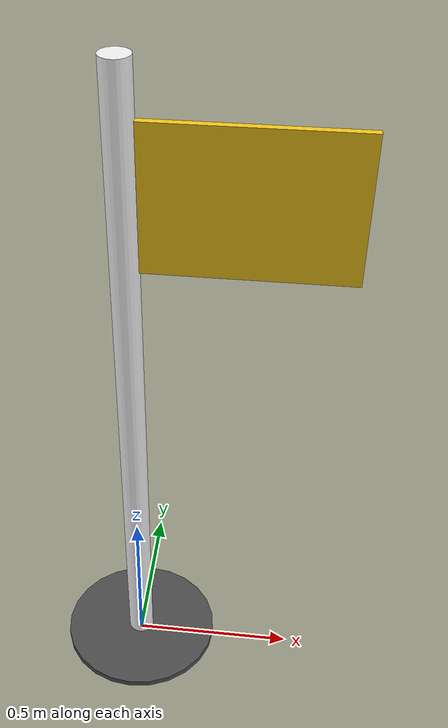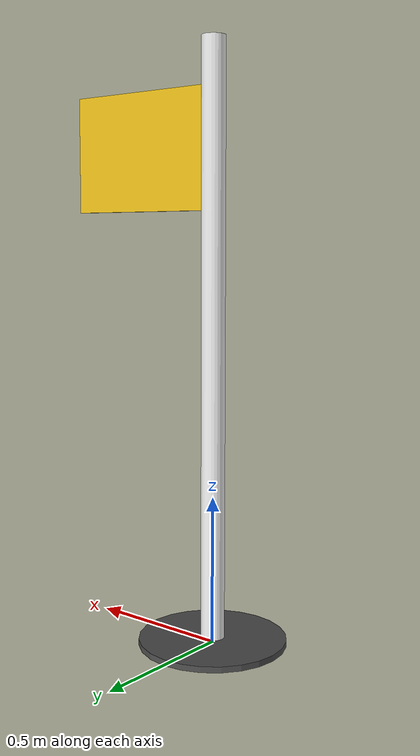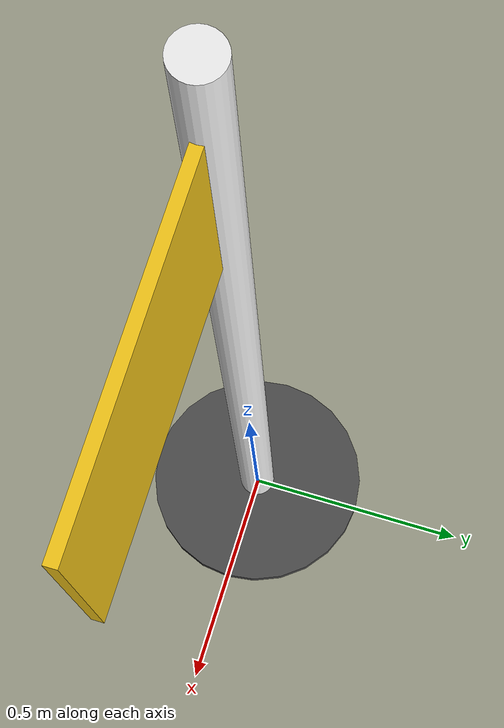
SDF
<?xml version="1.0"?>
<sdf version="1.10">
  <model name="goal_flag">
    <static>true</static>
    <link name="link">
      <pose>0 0 0 0 0 0</pose>
      <!-- pole -->
      <visual name="pole">
        <pose>0 0 1.0 0 0 0</pose>
        <geometry>
          <cylinder><radius>0.04</radius><length>2.0</length></cylinder>
        </geometry>
        <material>
          <ambient>0.95 0.95 0.95 1</ambient>
          <diffuse>0.95 0.95 0.95 1</diffuse>
        </material>
      </visual>
      <!-- flag cloth -->
      <visual name="cloth">
        <pose>0.30 0 1.65 0 0 0</pose>
        <geometry>
          <box><size>0.60 0.02 0.40</size></box>
        </geometry>
        <material>
          <ambient>0.96 0.78 0.10 1</ambient>
          <diffuse>0.96 0.78 0.10 1</diffuse>
          <specular>0.05 0.05 0.05 1</specular>
          <emissive>0.20 0.16 0.02 1</emissive>
        </material>
      </visual>
      <!-- base disc for visibility -->
      <visual name="base">
        <pose>0 0 0.01 0 0 0</pose>
        <geometry>
          <cylinder><radius>0.25</radius><length>0.02</length></cylinder>
        </geometry>
        <material>
          <ambient>0.20 0.20 0.20 1</ambient>
          <diffuse>0.30 0.30 0.30 1</diffuse>
        </material>
      </visual>
    </link>
  </model>
</sdf>
